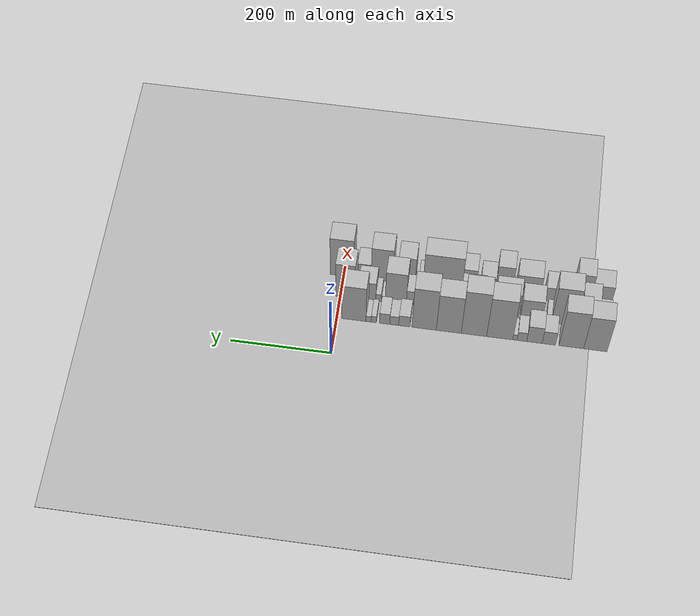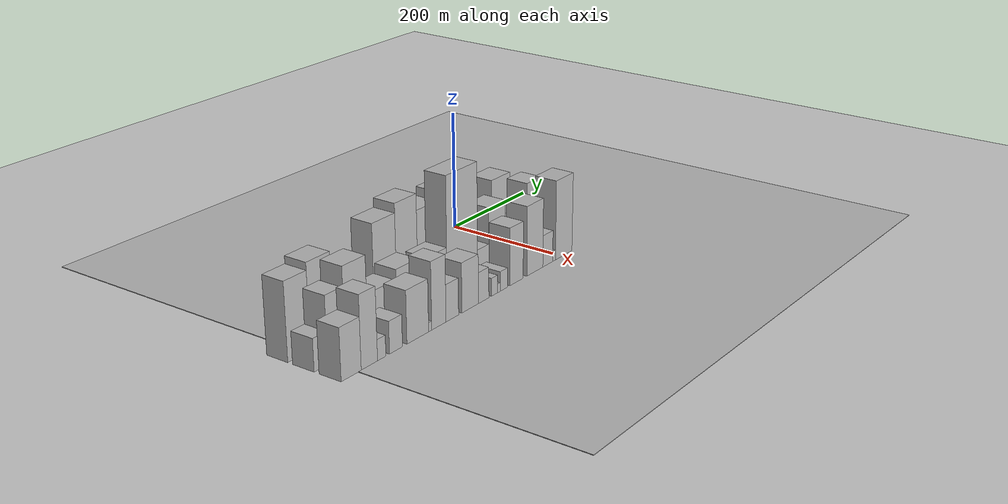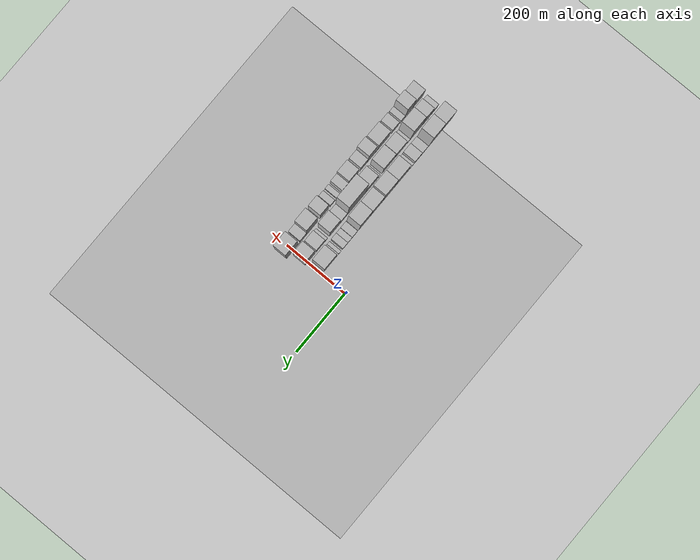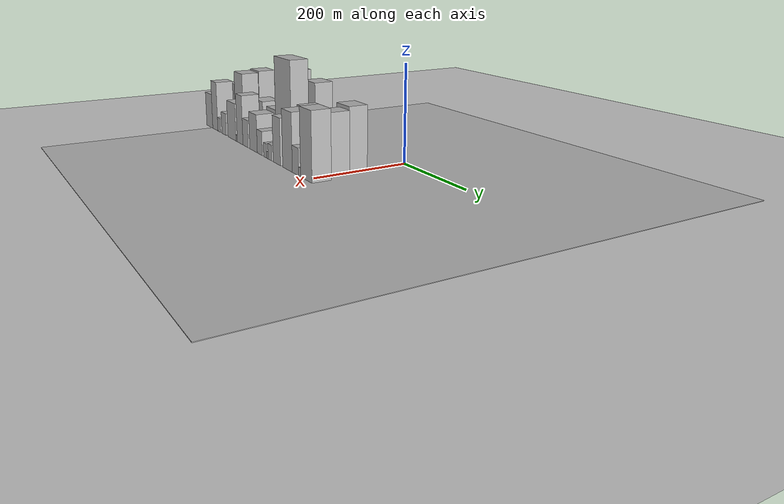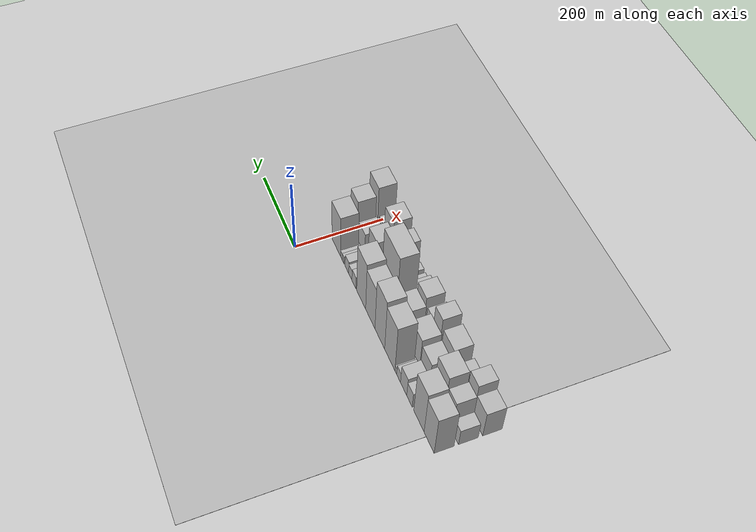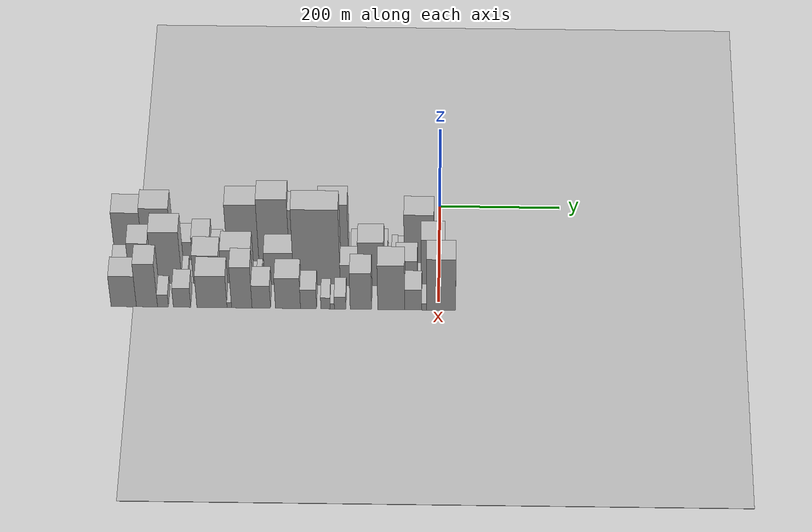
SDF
<sdf version="1.6">
 <world name="default">
  <include><name>ground_plane_1</name><uri>model://HANNAS_ground_plane</uri></include>
  <include>
   <name>ground_plane_2</name>
   <uri>model://HANNAS_ground_plane</uri>
   <pose>100 0 0  0 0 0</pose>
  </include>
  <model name="building_1">
   <static>1</static>
   <pose>100.0000 -513.0311 0 0.000000 0.000000 0.000000</pose>
   <link name="link">
    <pose>0 0 61.50 0 0 0</pose>
    <collision name="collision"><geometry><box><size>40.0000 45.9378 123.0000</size></box></geometry></collision>
    <visual name="visual">
     <cast_shadows>0</cast_shadows>
     <geometry><box><size>40.0000 45.9378 123.0000</size></box></geometry>
     <material>
      <script>
       <uri>model://HANNAS_wall/materials/scripts</uri>
       <uri>model://HANNAS_wall/materials/textures</uri>
       <name>vrc/HANNAS_wall</name>
      </script>
     </material>
    </visual>
   </link>
  </model>
  <model name="building_2">
   <static>1</static>
   <pose>100.0000 -465.8310 0 0.000000 0.000000 0.000000</pose>
   <link name="link">
    <pose>0 0 67.50 0 0 0</pose>
    <collision name="collision"><geometry><box><size>40.0000 48.4624 135.0000</size></box></geometry></collision>
    <visual name="visual">
     <cast_shadows>0</cast_shadows>
     <geometry><box><size>40.0000 48.4624 135.0000</size></box></geometry>
     <material>
      <script>
       <uri>model://HANNAS_wall/materials/scripts</uri>
       <uri>model://HANNAS_wall/materials/textures</uri>
       <name>vrc/HANNAS_wall</name>
      </script>
     </material>
    </visual>
   </link>
  </model>
  <model name="building_3">
   <static>1</static>
   <pose>100.0000 -421.4794 0 0.000000 0.000000 0.000000</pose>
   <link name="link">
    <pose>0 0 24.00 0 0 0</pose>
    <collision name="collision"><geometry><box><size>40.0000 26.2407 48.0000</size></box></geometry></collision>
    <visual name="visual">
     <cast_shadows>0</cast_shadows>
     <geometry><box><size>40.0000 26.2407 48.0000</size></box></geometry>
     <material>
      <script>
       <uri>model://HANNAS_wall/materials/scripts</uri>
       <uri>model://HANNAS_wall/materials/textures</uri>
       <name>vrc/HANNAS_wall</name>
      </script>
     </material>
    </visual>
   </link>
  </model>
  <model name="building_4">
   <static>1</static>
   <pose>100.0000 -393.1098 0 0.000000 0.000000 0.000000</pose>
   <link name="link">
    <pose>0 0 30.00 0 0 0</pose>
    <collision name="collision"><geometry><box><size>40.0000 30.4985 60.0000</size></box></geometry></collision>
    <visual name="visual">
     <cast_shadows>0</cast_shadows>
     <geometry><box><size>40.0000 30.4985 60.0000</size></box></geometry>
     <material>
      <script>
       <uri>model://HANNAS_wall/materials/scripts</uri>
       <uri>model://HANNAS_wall/materials/textures</uri>
       <name>vrc/HANNAS_wall</name>
      </script>
     </material>
    </visual>
   </link>
  </model>
  <model name="building_5">
   <static>1</static>
   <pose>100.0000 -368.4196 0 0.000000 0.000000 0.000000</pose>
   <link name="link">
    <pose>0 0 16.50 0 0 0</pose>
    <collision name="collision"><geometry><box><size>40.0000 18.8819 33.0000</size></box></geometry></collision>
    <visual name="visual">
     <cast_shadows>0</cast_shadows>
     <geometry><box><size>40.0000 18.8819 33.0000</size></box></geometry>
     <material>
      <script>
       <uri>model://HANNAS_wall/materials/scripts</uri>
       <uri>model://HANNAS_wall/materials/textures</uri>
       <name>vrc/HANNAS_wall</name>
      </script>
     </material>
    </visual>
   </link>
  </model>
  <model name="building_6">
   <static>1</static>
   <pose>100.0000 -354.5994 0 0.000000 0.000000 0.000000</pose>
   <link name="link">
    <pose>0 0 10.50 0 0 0</pose>
    <collision name="collision"><geometry><box><size>40.0000 8.7584 21.0000</size></box></geometry></collision>
    <visual name="visual">
     <cast_shadows>0</cast_shadows>
     <geometry><box><size>40.0000 8.7584 21.0000</size></box></geometry>
     <material>
      <script>
       <uri>model://HANNAS_wall/materials/scripts</uri>
       <uri>model://HANNAS_wall/materials/textures</uri>
       <name>vrc/HANNAS_wall</name>
      </script>
     </material>
    </visual>
   </link>
  </model>
  <model name="building_7">
   <static>1</static>
   <pose>100.0000 -324.2899 0 0.000000 0.000000 0.000000</pose>
   <link name="link">
    <pose>0 0 73.50 0 0 0</pose>
    <collision name="collision"><geometry><box><size>40.0000 51.8606 147.0000</size></box></geometry></collision>
    <visual name="visual">
     <cast_shadows>0</cast_shadows>
     <geometry><box><size>40.0000 51.8606 147.0000</size></box></geometry>
     <material>
      <script>
       <uri>model://HANNAS_wall/materials/scripts</uri>
       <uri>model://HANNAS_wall/materials/textures</uri>
       <name>vrc/HANNAS_wall</name>
      </script>
     </material>
    </visual>
   </link>
  </model>
  <model name="building_8">
   <static>1</static>
   <pose>100.0000 -273.1659 0 0.000000 0.000000 0.000000</pose>
   <link name="link">
    <pose>0 0 81.00 0 0 0</pose>
    <collision name="collision"><geometry><box><size>40.0000 50.3876 162.0000</size></box></geometry></collision>
    <visual name="visual">
     <cast_shadows>0</cast_shadows>
     <geometry><box><size>40.0000 50.3876 162.0000</size></box></geometry>
     <material>
      <script>
       <uri>model://HANNAS_wall/materials/scripts</uri>
       <uri>model://HANNAS_wall/materials/textures</uri>
       <name>vrc/HANNAS_wall</name>
      </script>
     </material>
    </visual>
   </link>
  </model>
  <model name="building_9">
   <static>1</static>
   <pose>100.0000 -223.2876 0 0.000000 0.000000 0.000000</pose>
   <link name="link">
    <pose>0 0 67.50 0 0 0</pose>
    <collision name="collision"><geometry><box><size>40.0000 49.3688 135.0000</size></box></geometry></collision>
    <visual name="visual">
     <cast_shadows>0</cast_shadows>
     <geometry><box><size>40.0000 49.3688 135.0000</size></box></geometry>
     <material>
      <script>
       <uri>model://HANNAS_wall/materials/scripts</uri>
       <uri>model://HANNAS_wall/materials/textures</uri>
       <name>vrc/HANNAS_wall</name>
      </script>
     </material>
    </visual>
   </link>
  </model>
  <model name="building_10">
   <static>1</static>
   <pose>100.0000 -174.2582 0 0.000000 0.000000 0.000000</pose>
   <link name="link">
    <pose>0 0 75.00 0 0 0</pose>
    <collision name="collision"><geometry><box><size>40.0000 48.6901 150.0000</size></box></geometry></collision>
    <visual name="visual">
     <cast_shadows>0</cast_shadows>
     <geometry><box><size>40.0000 48.6901 150.0000</size></box></geometry>
     <material>
      <script>
       <uri>model://HANNAS_wall/materials/scripts</uri>
       <uri>model://HANNAS_wall/materials/textures</uri>
       <name>vrc/HANNAS_wall</name>
      </script>
     </material>
    </visual>
   </link>
  </model>
  <model name="building_11">
   <static>1</static>
   <pose>100.0000 -134.7370 0 0.000000 0.000000 0.000000</pose>
   <link name="link">
    <pose>0 0 19.50 0 0 0</pose>
    <collision name="collision"><geometry><box><size>40.0000 22.3522 39.0000</size></box></geometry></collision>
    <visual name="visual">
     <cast_shadows>0</cast_shadows>
     <geometry><box><size>40.0000 22.3522 39.0000</size></box></geometry>
     <material>
      <script>
       <uri>model://HANNAS_wall/materials/scripts</uri>
       <uri>model://HANNAS_wall/materials/textures</uri>
       <name>vrc/HANNAS_wall</name>
      </script>
     </material>
    </visual>
   </link>
  </model>
  <model name="building_12">
   <static>1</static>
   <pose>100.0000 -114.6446 0 0.000000 0.000000 0.000000</pose>
   <link name="link">
    <pose>0 0 16.50 0 0 0</pose>
    <collision name="collision"><geometry><box><size>40.0000 17.8327 33.0000</size></box></geometry></collision>
    <visual name="visual">
     <cast_shadows>0</cast_shadows>
     <geometry><box><size>40.0000 17.8327 33.0000</size></box></geometry>
     <material>
      <script>
       <uri>model://HANNAS_wall/materials/scripts</uri>
       <uri>model://HANNAS_wall/materials/textures</uri>
       <name>vrc/HANNAS_wall</name>
      </script>
     </material>
    </visual>
   </link>
  </model>
  <model name="building_13">
   <static>1</static>
   <pose>100.0000 -95.3053 0 0.000000 0.000000 0.000000</pose>
   <link name="link">
    <pose>0 0 19.50 0 0 0</pose>
    <collision name="collision"><geometry><box><size>40.0000 20.8459 39.0000</size></box></geometry></collision>
    <visual name="visual">
     <cast_shadows>0</cast_shadows>
     <geometry><box><size>40.0000 20.8459 39.0000</size></box></geometry>
     <material>
      <script>
       <uri>model://HANNAS_wall/materials/scripts</uri>
       <uri>model://HANNAS_wall/materials/textures</uri>
       <name>vrc/HANNAS_wall</name>
      </script>
     </material>
    </visual>
   </link>
  </model>
  <model name="building_14">
   <static>1</static>
   <pose>100.0000 -73.6929 0 0.000000 0.000000 0.000000</pose>
   <link name="link">
    <pose>0 0 12.00 0 0 0</pose>
    <collision name="collision"><geometry><box><size>40.0000 10.3789 24.0000</size></box></geometry></collision>
    <visual name="visual">
     <cast_shadows>0</cast_shadows>
     <geometry><box><size>40.0000 10.3789 24.0000</size></box></geometry>
     <material>
      <script>
       <uri>model://HANNAS_wall/materials/scripts</uri>
       <uri>model://HANNAS_wall/materials/textures</uri>
       <name>vrc/HANNAS_wall</name>
      </script>
     </material>
    </visual>
   </link>
  </model>
  <model name="building_15">
   <static>1</static>
   <pose>100.0000 -63.2719 0 0.000000 0.000000 0.000000</pose>
   <link name="link">
    <pose>0 0 10.50 0 0 0</pose>
    <collision name="collision"><geometry><box><size>40.0000 10.4631 21.0000</size></box></geometry></collision>
    <visual name="visual">
     <cast_shadows>0</cast_shadows>
     <geometry><box><size>40.0000 10.4631 21.0000</size></box></geometry>
     <material>
      <script>
       <uri>model://HANNAS_wall/materials/scripts</uri>
       <uri>model://HANNAS_wall/materials/textures</uri>
       <name>vrc/HANNAS_wall</name>
      </script>
     </material>
    </visual>
   </link>
  </model>
  <model name="building_16">
   <static>1</static>
   <pose>100.0000 -33.5212 0 0.000000 0.000000 0.000000</pose>
   <link name="link">
    <pose>0 0 63.00 0 0 0</pose>
    <collision name="collision"><geometry><box><size>40.0000 49.0381 126.0000</size></box></geometry></collision>
    <visual name="visual">
     <cast_shadows>0</cast_shadows>
     <geometry><box><size>40.0000 49.0381 126.0000</size></box></geometry>
     <material>
      <script>
       <uri>model://HANNAS_wall/materials/scripts</uri>
       <uri>model://HANNAS_wall/materials/textures</uri>
       <name>vrc/HANNAS_wall</name>
      </script>
     </material>
    </visual>
   </link>
  </model>
  <model name="building_33">
   <static>1</static>
   <pose>149.0000 -522.2949 0 0.000000 0.000000 0.000000</pose>
   <link name="link">
    <pose>0 0 25.50 0 0 0</pose>
    <collision name="collision"><geometry><box><size>40.0000 27.4102 51.0000</size></box></geometry></collision>
    <visual name="visual">
     <cast_shadows>0</cast_shadows>
     <geometry><box><size>40.0000 27.4102 51.0000</size></box></geometry>
     <material>
      <script>
       <uri>model://HANNAS_wall/materials/scripts</uri>
       <uri>model://HANNAS_wall/materials/textures</uri>
       <name>vrc/HANNAS_wall</name>
      </script>
     </material>
    </visual>
   </link>
  </model>
  <model name="building_34">
   <static>1</static>
   <pose>149.0000 -491.5027 0 0.000000 0.000000 0.000000</pose>
   <link name="link">
    <pose>0 0 52.50 0 0 0</pose>
    <collision name="collision"><geometry><box><size>40.0000 34.1741 105.0000</size></box></geometry></collision>
    <visual name="visual">
     <cast_shadows>0</cast_shadows>
     <geometry><box><size>40.0000 34.1741 105.0000</size></box></geometry>
     <material>
      <script>
       <uri>model://HANNAS_wall/materials/scripts</uri>
       <uri>model://HANNAS_wall/materials/textures</uri>
       <name>vrc/HANNAS_wall</name>
      </script>
     </material>
    </visual>
   </link>
  </model>
  <model name="building_35">
   <static>1</static>
   <pose>149.0000 -446.9399 0 0.000000 0.000000 0.000000</pose>
   <link name="link">
    <pose>0 0 67.50 0 0 0</pose>
    <collision name="collision"><geometry><box><size>40.0000 48.9515 135.0000</size></box></geometry></collision>
    <visual name="visual">
     <cast_shadows>0</cast_shadows>
     <geometry><box><size>40.0000 48.9515 135.0000</size></box></geometry>
     <material>
      <script>
       <uri>model://HANNAS_wall/materials/scripts</uri>
       <uri>model://HANNAS_wall/materials/textures</uri>
       <name>vrc/HANNAS_wall</name>
      </script>
     </material>
    </visual>
   </link>
  </model>
  <model name="building_36">
   <static>1</static>
   <pose>149.0000 -417.2309 0 0.000000 0.000000 0.000000</pose>
   <link name="link">
    <pose>0 0 12.00 0 0 0</pose>
    <collision name="collision"><geometry><box><size>40.0000 10.4664 24.0000</size></box></geometry></collision>
    <visual name="visual">
     <cast_shadows>0</cast_shadows>
     <geometry><box><size>40.0000 10.4664 24.0000</size></box></geometry>
     <material>
      <script>
       <uri>model://HANNAS_wall/materials/scripts</uri>
       <uri>model://HANNAS_wall/materials/textures</uri>
       <name>vrc/HANNAS_wall</name>
      </script>
     </material>
    </visual>
   </link>
  </model>
  <model name="building_37">
   <static>1</static>
   <pose>149.0000 -382.1430 0 0.000000 0.000000 0.000000</pose>
   <link name="link">
    <pose>0 0 37.50 0 0 0</pose>
    <collision name="collision"><geometry><box><size>40.0000 43.7095 75.0000</size></box></geometry></collision>
    <visual name="visual">
     <cast_shadows>0</cast_shadows>
     <geometry><box><size>40.0000 43.7095 75.0000</size></box></geometry>
     <material>
      <script>
       <uri>model://HANNAS_wall/materials/scripts</uri>
       <uri>model://HANNAS_wall/materials/textures</uri>
       <name>vrc/HANNAS_wall</name>
      </script>
     </material>
    </visual>
   </link>
  </model>
  <model name="building_38">
   <static>1</static>
   <pose>149.0000 -332.1110 0 0.000000 0.000000 0.000000</pose>
   <link name="link">
    <pose>0 0 45.00 0 0 0</pose>
    <collision name="collision"><geometry><box><size>40.0000 50.3545 90.0000</size></box></geometry></collision>
    <visual name="visual">
     <cast_shadows>0</cast_shadows>
     <geometry><box><size>40.0000 50.3545 90.0000</size></box></geometry>
     <material>
      <script>
       <uri>model://HANNAS_wall/materials/scripts</uri>
       <uri>model://HANNAS_wall/materials/textures</uri>
       <name>vrc/HANNAS_wall</name>
      </script>
     </material>
    </visual>
   </link>
  </model>
  <model name="building_39">
   <static>1</static>
   <pose>149.0000 -295.4854 0 0.000000 0.000000 0.000000</pose>
   <link name="link">
    <pose>0 0 9.00 0 0 0</pose>
    <collision name="collision"><geometry><box><size>40.0000 8.8966 18.0000</size></box></geometry></collision>
    <visual name="visual">
     <cast_shadows>0</cast_shadows>
     <geometry><box><size>40.0000 8.8966 18.0000</size></box></geometry>
     <material>
      <script>
       <uri>model://HANNAS_wall/materials/scripts</uri>
       <uri>model://HANNAS_wall/materials/textures</uri>
       <name>vrc/HANNAS_wall</name>
      </script>
     </material>
    </visual>
   </link>
  </model>
  <model name="building_40">
   <static>1</static>
   <pose>149.0000 -262.4129 0 0.000000 0.000000 0.000000</pose>
   <link name="link">
    <pose>0 0 42.00 0 0 0</pose>
    <collision name="collision"><geometry><box><size>40.0000 47.2484 84.0000</size></box></geometry></collision>
    <visual name="visual">
     <cast_shadows>0</cast_shadows>
     <geometry><box><size>40.0000 47.2484 84.0000</size></box></geometry>
     <material>
      <script>
       <uri>model://HANNAS_wall/materials/scripts</uri>
       <uri>model://HANNAS_wall/materials/textures</uri>
       <name>vrc/HANNAS_wall</name>
      </script>
     </material>
    </visual>
   </link>
  </model>
  <model name="building_41">
   <static>1</static>
   <pose>149.0000 -200.4970 0 0.000000 0.000000 0.000000</pose>
   <link name="link">
    <pose>0 0 99.00 0 0 0</pose>
    <collision name="collision"><geometry><box><size>40.0000 76.5833 198.0000</size></box></geometry></collision>
    <visual name="visual">
     <cast_shadows>0</cast_shadows>
     <geometry><box><size>40.0000 76.5833 198.0000</size></box></geometry>
     <material>
      <script>
       <uri>model://HANNAS_wall/materials/scripts</uri>
       <uri>model://HANNAS_wall/materials/textures</uri>
       <name>vrc/HANNAS_wall</name>
      </script>
     </material>
    </visual>
   </link>
  </model>
  <model name="building_42">
   <static>1</static>
   <pose>149.0000 -147.3521 0 0.000000 0.000000 0.000000</pose>
   <link name="link">
    <pose>0 0 27.00 0 0 0</pose>
    <collision name="collision"><geometry><box><size>40.0000 29.7065 54.0000</size></box></geometry></collision>
    <visual name="visual">
     <cast_shadows>0</cast_shadows>
     <geometry><box><size>40.0000 29.7065 54.0000</size></box></geometry>
     <material>
      <script>
       <uri>model://HANNAS_wall/materials/scripts</uri>
       <uri>model://HANNAS_wall/materials/textures</uri>
       <name>vrc/HANNAS_wall</name>
      </script>
     </material>
    </visual>
   </link>
  </model>
  <model name="building_43">
   <static>1</static>
   <pose>149.0000 -111.2031 0 0.000000 0.000000 0.000000</pose>
   <link name="link">
    <pose>0 0 57.00 0 0 0</pose>
    <collision name="collision"><geometry><box><size>40.0000 42.5916 114.0000</size></box></geometry></collision>
    <visual name="visual">
     <cast_shadows>0</cast_shadows>
     <geometry><box><size>40.0000 42.5916 114.0000</size></box></geometry>
     <material>
      <script>
       <uri>model://HANNAS_wall/materials/scripts</uri>
       <uri>model://HANNAS_wall/materials/textures</uri>
       <name>vrc/HANNAS_wall</name>
      </script>
     </material>
    </visual>
   </link>
  </model>
  <model name="building_44">
   <static>1</static>
   <pose>149.0000 -76.4898 0 0.000000 0.000000 0.000000</pose>
   <link name="link">
    <pose>0 0 13.50 0 0 0</pose>
    <collision name="collision"><geometry><box><size>40.0000 10.8350 27.0000</size></box></geometry></collision>
    <visual name="visual">
     <cast_shadows>0</cast_shadows>
     <geometry><box><size>40.0000 10.8350 27.0000</size></box></geometry>
     <material>
      <script>
       <uri>model://HANNAS_wall/materials/scripts</uri>
       <uri>model://HANNAS_wall/materials/textures</uri>
       <name>vrc/HANNAS_wall</name>
      </script>
     </material>
    </visual>
   </link>
  </model>
  <model name="building_45">
   <static>1</static>
   <pose>149.0000 -53.2678 0 0.000000 0.000000 0.000000</pose>
   <link name="link">
    <pose>0 0 33.00 0 0 0</pose>
    <collision name="collision"><geometry><box><size>40.0000 35.6089 66.0000</size></box></geometry></collision>
    <visual name="visual">
     <cast_shadows>0</cast_shadows>
     <geometry><box><size>40.0000 35.6089 66.0000</size></box></geometry>
     <material>
      <script>
       <uri>model://HANNAS_wall/materials/scripts</uri>
       <uri>model://HANNAS_wall/materials/textures</uri>
       <name>vrc/HANNAS_wall</name>
      </script>
     </material>
    </visual>
   </link>
  </model>
  <model name="building_46">
   <static>1</static>
   <pose>149.0000 -9.8312 0 0.000000 0.000000 0.000000</pose>
   <link name="link">
    <pose>0 0 61.50 0 0 0</pose>
    <collision name="collision"><geometry><box><size>40.0000 39.2644 123.0000</size></box></geometry></collision>
    <visual name="visual">
     <cast_shadows>0</cast_shadows>
     <geometry><box><size>40.0000 39.2644 123.0000</size></box></geometry>
     <material>
      <script>
       <uri>model://HANNAS_wall/materials/scripts</uri>
       <uri>model://HANNAS_wall/materials/textures</uri>
       <name>vrc/HANNAS_wall</name>
      </script>
     </material>
    </visual>
   </link>
  </model>
  <model name="building_63">
   <static>1</static>
   <pose>198.0000 -515.2412 0 0.000000 0.000000 0.000000</pose>
   <link name="link">
    <pose>0 0 40.50 0 0 0</pose>
    <collision name="collision"><geometry><box><size>40.0000 41.5176 81.0000</size></box></geometry></collision>
    <visual name="visual">
     <cast_shadows>0</cast_shadows>
     <geometry><box><size>40.0000 41.5176 81.0000</size></box></geometry>
     <material>
      <script>
       <uri>model://HANNAS_wall/materials/scripts</uri>
       <uri>model://HANNAS_wall/materials/textures</uri>
       <name>vrc/HANNAS_wall</name>
      </script>
     </material>
    </visual>
   </link>
  </model>
  <model name="building_64">
   <static>1</static>
   <pose>198.0000 -477.1796 0 0.000000 0.000000 0.000000</pose>
   <link name="link">
    <pose>0 0 57.00 0 0 0</pose>
    <collision name="collision"><geometry><box><size>40.0000 34.6056 114.0000</size></box></geometry></collision>
    <visual name="visual">
     <cast_shadows>0</cast_shadows>
     <geometry><box><size>40.0000 34.6056 114.0000</size></box></geometry>
     <material>
      <script>
       <uri>model://HANNAS_wall/materials/scripts</uri>
       <uri>model://HANNAS_wall/materials/textures</uri>
       <name>vrc/HANNAS_wall</name>
      </script>
     </material>
    </visual>
   </link>
  </model>
  <model name="building_65">
   <static>1</static>
   <pose>198.0000 -450.9288 0 0.000000 0.000000 0.000000</pose>
   <link name="link">
    <pose>0 0 16.50 0 0 0</pose>
    <collision name="collision"><geometry><box><size>40.0000 17.8959 33.0000</size></box></geometry></collision>
    <visual name="visual">
     <cast_shadows>0</cast_shadows>
     <geometry><box><size>40.0000 17.8959 33.0000</size></box></geometry>
     <material>
      <script>
       <uri>model://HANNAS_wall/materials/scripts</uri>
       <uri>model://HANNAS_wall/materials/textures</uri>
       <name>vrc/HANNAS_wall</name>
      </script>
     </material>
    </visual>
   </link>
  </model>
  <model name="building_66">
   <static>1</static>
   <pose>198.0000 -419.7097 0 0.000000 0.000000 0.000000</pose>
   <link name="link">
    <pose>0 0 25.50 0 0 0</pose>
    <collision name="collision"><geometry><box><size>40.0000 28.5423 51.0000</size></box></geometry></collision>
    <visual name="visual">
     <cast_shadows>0</cast_shadows>
     <geometry><box><size>40.0000 28.5423 51.0000</size></box></geometry>
     <material>
      <script>
       <uri>model://HANNAS_wall/materials/scripts</uri>
       <uri>model://HANNAS_wall/materials/textures</uri>
       <name>vrc/HANNAS_wall</name>
      </script>
     </material>
    </visual>
   </link>
  </model>
  <model name="building_67">
   <static>1</static>
   <pose>198.0000 -370.7228 0 0.000000 0.000000 0.000000</pose>
   <link name="link">
    <pose>0 0 42.00 0 0 0</pose>
    <collision name="collision"><geometry><box><size>40.0000 49.4315 84.0000</size></box></geometry></collision>
    <visual name="visual">
     <cast_shadows>0</cast_shadows>
     <geometry><box><size>40.0000 49.4315 84.0000</size></box></geometry>
     <material>
      <script>
       <uri>model://HANNAS_wall/materials/scripts</uri>
       <uri>model://HANNAS_wall/materials/textures</uri>
       <name>vrc/HANNAS_wall</name>
      </script>
     </material>
    </visual>
   </link>
  </model>
  <model name="building_68">
   <static>1</static>
   <pose>198.0000 -342.3304 0 0.000000 0.000000 0.000000</pose>
   <link name="link">
    <pose>0 0 7.50 0 0 0</pose>
    <collision name="collision"><geometry><box><size>40.0000 7.3532 15.0000</size></box></geometry></collision>
    <visual name="visual">
     <cast_shadows>0</cast_shadows>
     <geometry><box><size>40.0000 7.3532 15.0000</size></box></geometry>
     <material>
      <script>
       <uri>model://HANNAS_wall/materials/scripts</uri>
       <uri>model://HANNAS_wall/materials/textures</uri>
       <name>vrc/HANNAS_wall</name>
      </script>
     </material>
    </visual>
   </link>
  </model>
  <model name="building_69">
   <static>1</static>
   <pose>198.0000 -321.8629 0 0.000000 0.000000 0.000000</pose>
   <link name="link">
    <pose>0 0 54.00 0 0 0</pose>
    <collision name="collision"><geometry><box><size>40.0000 33.5818 108.0000</size></box></geometry></collision>
    <visual name="visual">
     <cast_shadows>0</cast_shadows>
     <geometry><box><size>40.0000 33.5818 108.0000</size></box></geometry>
     <material>
      <script>
       <uri>model://HANNAS_wall/materials/scripts</uri>
       <uri>model://HANNAS_wall/materials/textures</uri>
       <name>vrc/HANNAS_wall</name>
      </script>
     </material>
    </visual>
   </link>
  </model>
  <model name="building_70">
   <static>1</static>
   <pose>198.0000 -289.9392 0 0.000000 0.000000 0.000000</pose>
   <link name="link">
    <pose>0 0 30.00 0 0 0</pose>
    <collision name="collision"><geometry><box><size>40.0000 30.2657 60.0000</size></box></geometry></collision>
    <visual name="visual">
     <cast_shadows>0</cast_shadows>
     <geometry><box><size>40.0000 30.2657 60.0000</size></box></geometry>
     <material>
      <script>
       <uri>model://HANNAS_wall/materials/scripts</uri>
       <uri>model://HANNAS_wall/materials/textures</uri>
       <name>vrc/HANNAS_wall</name>
      </script>
     </material>
    </visual>
   </link>
  </model>
  <model name="building_71">
   <static>1</static>
   <pose>198.0000 -246.3051 0 0.000000 0.000000 0.000000</pose>
   <link name="link">
    <pose>0 0 40.50 0 0 0</pose>
    <collision name="collision"><geometry><box><size>40.0000 41.0024 81.0000</size></box></geometry></collision>
    <visual name="visual">
     <cast_shadows>0</cast_shadows>
     <geometry><box><size>40.0000 41.0024 81.0000</size></box></geometry>
     <material>
      <script>
       <uri>model://HANNAS_wall/materials/scripts</uri>
       <uri>model://HANNAS_wall/materials/textures</uri>
       <name>vrc/HANNAS_wall</name>
      </script>
     </material>
    </visual>
   </link>
  </model>
  <model name="building_72">
   <static>1</static>
   <pose>198.0000 -212.6303 0 0.000000 0.000000 0.000000</pose>
   <link name="link">
    <pose>0 0 25.50 0 0 0</pose>
    <collision name="collision"><geometry><box><size>40.0000 26.3472 51.0000</size></box></geometry></collision>
    <visual name="visual">
     <cast_shadows>0</cast_shadows>
     <geometry><box><size>40.0000 26.3472 51.0000</size></box></geometry>
     <material>
      <script>
       <uri>model://HANNAS_wall/materials/scripts</uri>
       <uri>model://HANNAS_wall/materials/textures</uri>
       <name>vrc/HANNAS_wall</name>
      </script>
     </material>
    </visual>
   </link>
  </model>
  <model name="building_73">
   <static>1</static>
   <pose>198.0000 -184.7984 0 0.000000 0.000000 0.000000</pose>
   <link name="link">
    <pose>0 0 15.00 0 0 0</pose>
    <collision name="collision"><geometry><box><size>40.0000 15.3164 30.0000</size></box></geometry></collision>
    <visual name="visual">
     <cast_shadows>0</cast_shadows>
     <geometry><box><size>40.0000 15.3164 30.0000</size></box></geometry>
     <material>
      <script>
       <uri>model://HANNAS_wall/materials/scripts</uri>
       <uri>model://HANNAS_wall/materials/textures</uri>
       <name>vrc/HANNAS_wall</name>
      </script>
     </material>
    </visual>
   </link>
  </model>
  <model name="building_74">
   <static>1</static>
   <pose>198.0000 -173.7482 0 0.000000 0.000000 0.000000</pose>
   <link name="link">
    <pose>0 0 7.50 0 0 0</pose>
    <collision name="collision"><geometry><box><size>40.0000 6.7840 15.0000</size></box></geometry></collision>
    <visual name="visual">
     <cast_shadows>0</cast_shadows>
     <geometry><box><size>40.0000 6.7840 15.0000</size></box></geometry>
     <material>
      <script>
       <uri>model://HANNAS_wall/materials/scripts</uri>
       <uri>model://HANNAS_wall/materials/textures</uri>
       <name>vrc/HANNAS_wall</name>
      </script>
     </material>
    </visual>
   </link>
  </model>
  <model name="building_75">
   <static>1</static>
   <pose>198.0000 -160.8856 0 0.000000 0.000000 0.000000</pose>
   <link name="link">
    <pose>0 0 16.50 0 0 0</pose>
    <collision name="collision"><geometry><box><size>40.0000 18.9413 33.0000</size></box></geometry></collision>
    <visual name="visual">
     <cast_shadows>0</cast_shadows>
     <geometry><box><size>40.0000 18.9413 33.0000</size></box></geometry>
     <material>
      <script>
       <uri>model://HANNAS_wall/materials/scripts</uri>
       <uri>model://HANNAS_wall/materials/textures</uri>
       <name>vrc/HANNAS_wall</name>
      </script>
     </material>
    </visual>
   </link>
  </model>
  <model name="building_76">
   <static>1</static>
   <pose>198.0000 -126.8628 0 0.000000 0.000000 0.000000</pose>
   <link name="link">
    <pose>0 0 48.00 0 0 0</pose>
    <collision name="collision"><geometry><box><size>40.0000 35.1044 96.0000</size></box></geometry></collision>
    <visual name="visual">
     <cast_shadows>0</cast_shadows>
     <geometry><box><size>40.0000 35.1044 96.0000</size></box></geometry>
     <material>
      <script>
       <uri>model://HANNAS_wall/materials/scripts</uri>
       <uri>model://HANNAS_wall/materials/textures</uri>
       <name>vrc/HANNAS_wall</name>
      </script>
     </material>
    </visual>
   </link>
  </model>
  <model name="building_77">
   <static>1</static>
   <pose>198.0000 -77.2726 0 0.000000 0.000000 0.000000</pose>
   <link name="link">
    <pose>0 0 58.50 0 0 0</pose>
    <collision name="collision"><geometry><box><size>40.0000 44.0760 117.0000</size></box></geometry></collision>
    <visual name="visual">
     <cast_shadows>0</cast_shadows>
     <geometry><box><size>40.0000 44.0760 117.0000</size></box></geometry>
     <material>
      <script>
       <uri>model://HANNAS_wall/materials/scripts</uri>
       <uri>model://HANNAS_wall/materials/textures</uri>
       <name>vrc/HANNAS_wall</name>
      </script>
     </material>
    </visual>
   </link>
  </model>
  <model name="building_78">
   <static>1</static>
   <pose>198.0000 -41.4130 0 0.000000 0.000000 0.000000</pose>
   <link name="link">
    <pose>0 0 27.00 0 0 0</pose>
    <collision name="collision"><geometry><box><size>40.0000 27.6431 54.0000</size></box></geometry></collision>
    <visual name="visual">
     <cast_shadows>0</cast_shadows>
     <geometry><box><size>40.0000 27.6431 54.0000</size></box></geometry>
     <material>
      <script>
       <uri>model://HANNAS_wall/materials/scripts</uri>
       <uri>model://HANNAS_wall/materials/textures</uri>
       <name>vrc/HANNAS_wall</name>
      </script>
     </material>
    </visual>
   </link>
  </model>
  <model name="building_79">
   <static>1</static>
   <pose>198.0000 -23.6665 0 0.000000 0.000000 0.000000</pose>
   <link name="link">
    <pose>0 0 9.00 0 0 0</pose>
    <collision name="collision"><geometry><box><size>40.0000 7.8500 18.0000</size></box></geometry></collision>
    <visual name="visual">
     <cast_shadows>0</cast_shadows>
     <geometry><box><size>40.0000 7.8500 18.0000</size></box></geometry>
     <material>
      <script>
       <uri>model://HANNAS_wall/materials/scripts</uri>
       <uri>model://HANNAS_wall/materials/textures</uri>
       <name>vrc/HANNAS_wall</name>
      </script>
     </material>
    </visual>
   </link>
  </model>
  <model name="building_80">
   <static>1</static>
   <pose>198.0000 4.1180 0 0.000000 0.000000 0.000000</pose>
   <link name="link">
    <pose>0 0 67.50 0 0 0</pose>
    <collision name="collision"><geometry><box><size>40.0000 47.7190 135.0000</size></box></geometry></collision>
    <visual name="visual">
     <cast_shadows>0</cast_shadows>
     <geometry><box><size>40.0000 47.7190 135.0000</size></box></geometry>
     <material>
      <script>
       <uri>model://HANNAS_wall/materials/scripts</uri>
       <uri>model://HANNAS_wall/materials/textures</uri>
       <name>vrc/HANNAS_wall</name>
      </script>
     </material>
    </visual>
   </link>
  </model>
 </world>
</sdf>
